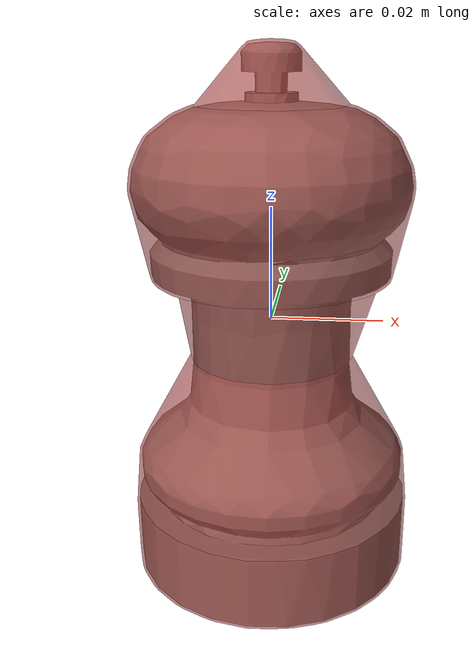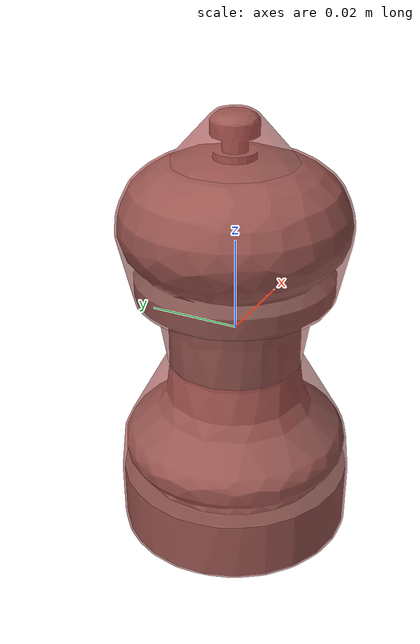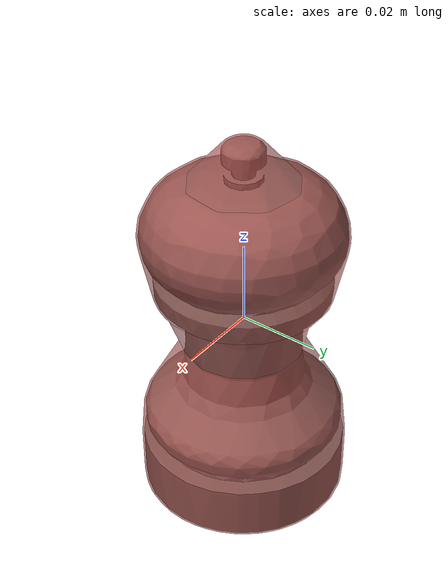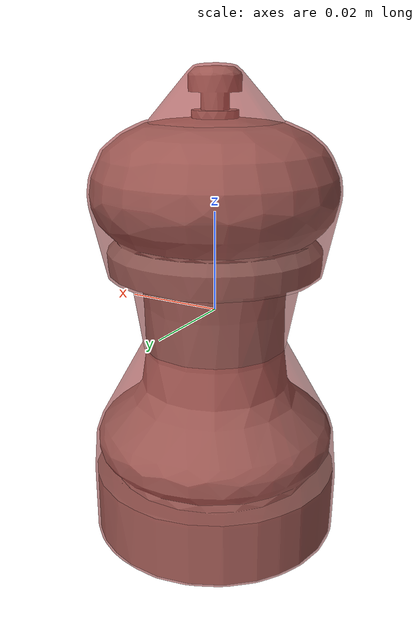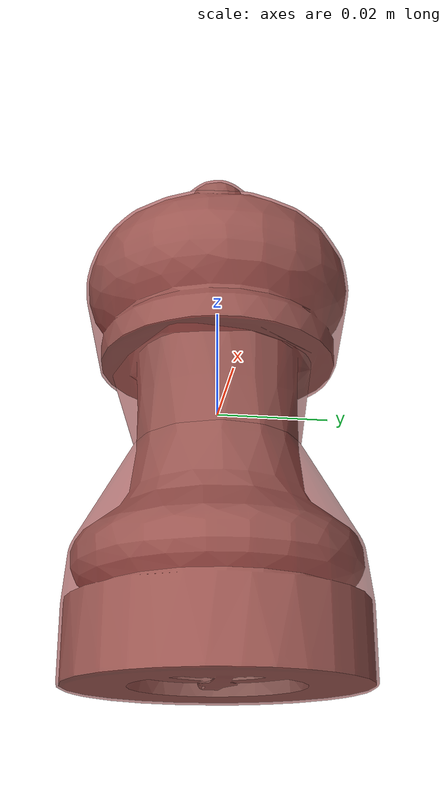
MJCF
<mujoco model="model">
  <option timestep="0.0005" gravity="0.0 0.0 -9.81"/>
  <compiler angle="radian"/>
  <asset>
    <mesh file="visual/SaltShaker003.obj" name="SaltShaker003_vis"/>
    <texture file="visual/T_BC001.png" name="SaltShaker003_material" type="2d"/>
    <material name="SaltShaker003_material" rgba="1 1 1 1.0" texture="SaltShaker003_material" shininess="0.29527562856674194" specular="0.3103448502657381"/>
    <mesh file="collision/collision_mesh_collision_0.obj" name="SaltShaker003_collision_mesh_0"/>
    <mesh file="collision/collision_mesh_collision_1.obj" name="SaltShaker003_collision_mesh_1"/>
    <mesh file="collision/collision_mesh_collision_2.obj" name="SaltShaker003_collision_mesh_2"/>
    <mesh file="collision/collision_mesh_collision_3.obj" name="SaltShaker003_collision_mesh_3"/>
  </asset>
  <default>
    <default class="visual">
      <geom conaffinity="0" contype="0" group="1" type="mesh"/>
    </default>
    <default class="collision">
      <geom group="0" rgba="0.5 0 0 0.5" density="1000.0"/>
    </default>
    <default class="spawn">
      <geom group="0" rgba="1 1 1 0.5" contype="0" conaffinity="0"/>
      <site group="0" rgba="1 1 1 0.5"/>
    </default>
    <default class="region">
      <geom group="1" conaffinity="0" contype="0" rgba="0 1 0 0" mass="0"/>
    </default>
  </default>
  <worldbody>
    <body>
      <body name="object">
        <geom mesh="SaltShaker003_vis" type="mesh" solimp="0.998 0.998 0.001" solref="0.001 1" friction="0.95 0.3 0.1" class="visual" material="SaltShaker003_material"/>
        <geom class="region" name="reg_bbox" type="box" pos="1.0100000000009407e-06 1.150000000001844e-07 -2.2819999999999785e-05" size="0.02572295 0.025719594999999998 0.04753827"/>
        <geom mesh="SaltShaker003_collision_mesh_0" type="mesh" class="collision"/>
        <geom mesh="SaltShaker003_collision_mesh_1" type="mesh" class="collision"/>
        <geom mesh="SaltShaker003_collision_mesh_2" type="mesh" class="collision"/>
        <geom mesh="SaltShaker003_collision_mesh_3" type="mesh" class="collision"/>
      </body>
      <site rgba="0 1 0 0" size="0.005" pos="0.0767095999999999 0 0" name="anchor_site"/>
    </body>
  </worldbody>
  <actuator/>
</mujoco>
